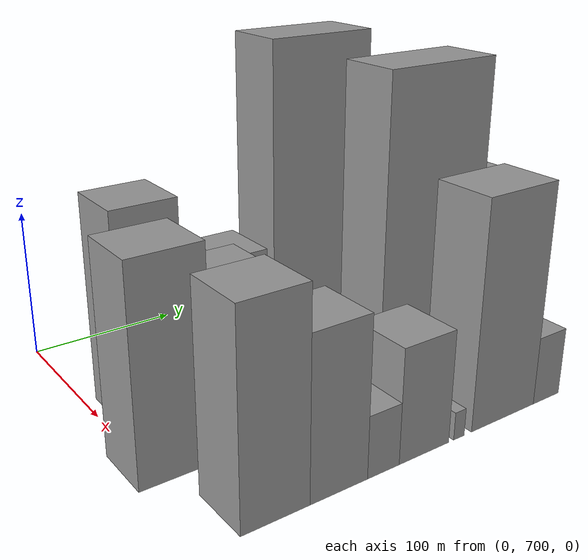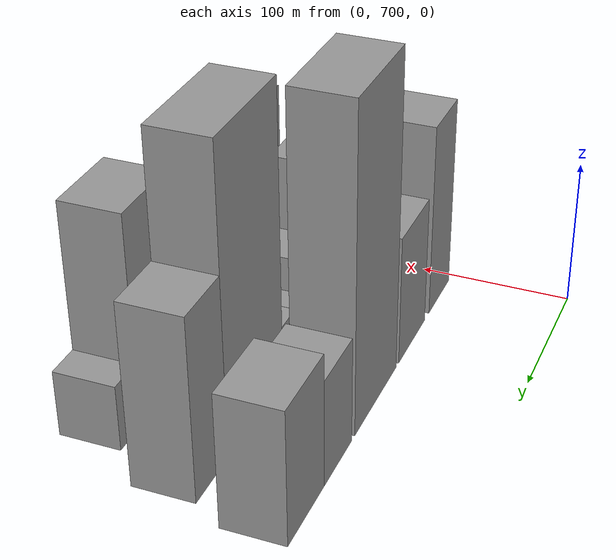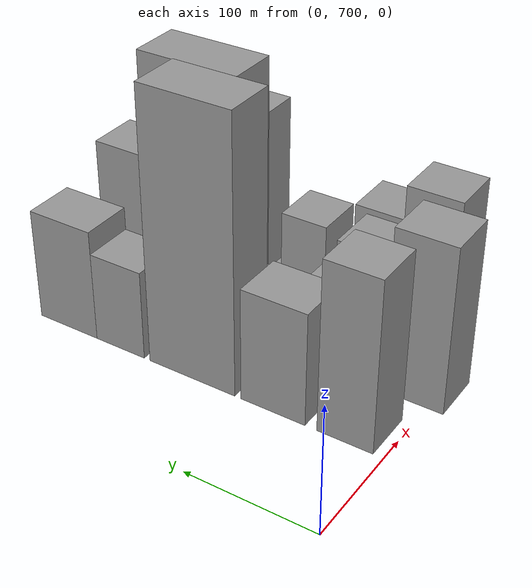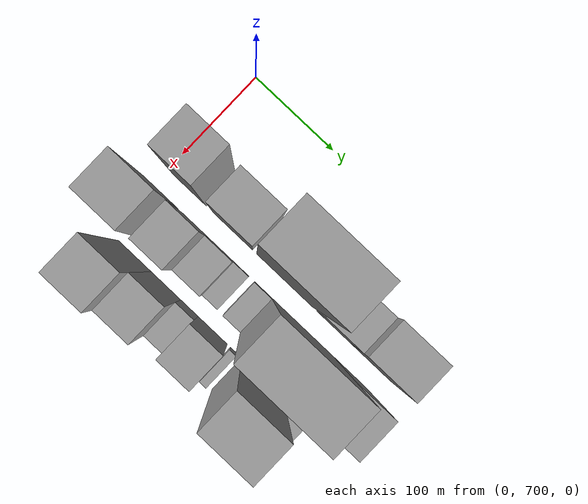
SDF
<sdf version="1.6">
 <world name="default">
  <model name="building_41">
   <static>1</static>
   <pose>100.0000 728.9118 0 0.000000 0.000000 0.000000</pose>
   <link name="link">
    <pose>0 0 67.50 0 0 0</pose>
    <collision name="collision"><geometry><box><size>40.0000 42.2020 135.0000</size></box></geometry></collision>
    <visual name="visual">
     <cast_shadows>0</cast_shadows>
     <geometry><box><size>40.0000 42.2020 135.0000</size></box></geometry>
     <material>
      <script>
       <uri>model://grey_wall/materials/scripts</uri>
       <uri>model://grey_wall/materials/textures</uri>
       <name>vrc/grey_wall</name>
      </script>
     </material>
    </visual>
   </link>
  </model>
  <model name="building_42">
   <static>1</static>
   <pose>100.0000 784.3996 0 0.000000 0.000000 0.000000</pose>
   <link name="link">
    <pose>0 0 45.00 0 0 0</pose>
    <collision name="collision"><geometry><box><size>40.0000 50.7735 90.0000</size></box></geometry></collision>
    <visual name="visual">
     <cast_shadows>0</cast_shadows>
     <geometry><box><size>40.0000 50.7735 90.0000</size></box></geometry>
     <material>
      <script>
       <uri>model://grey_wall/materials/scripts</uri>
       <uri>model://grey_wall/materials/textures</uri>
       <name>vrc/grey_wall</name>
      </script>
     </material>
    </visual>
   </link>
  </model>
  <model name="building_43">
   <static>1</static>
   <pose>100.0000 850.8839 0 0.000000 0.000000 0.000000</pose>
   <link name="link">
    <pose>0 0 108.00 0 0 0</pose>
    <collision name="collision"><geometry><box><size>40.0000 72.1952 216.0000</size></box></geometry></collision>
    <visual name="visual">
     <cast_shadows>0</cast_shadows>
     <geometry><box><size>40.0000 72.1952 216.0000</size></box></geometry>
     <material>
      <script>
       <uri>model://grey_wall/materials/scripts</uri>
       <uri>model://grey_wall/materials/textures</uri>
       <name>vrc/grey_wall</name>
      </script>
     </material>
    </visual>
   </link>
  </model>
  <model name="building_44">
   <static>1</static>
   <pose>100.0000 913.4026 0 0.000000 0.000000 0.000000</pose>
   <link name="link">
    <pose>0 0 36.00 0 0 0</pose>
    <collision name="collision"><geometry><box><size>40.0000 42.8422 72.0000</size></box></geometry></collision>
    <visual name="visual">
     <cast_shadows>0</cast_shadows>
     <geometry><box><size>40.0000 42.8422 72.0000</size></box></geometry>
     <material>
      <script>
       <uri>model://grey_wall/materials/scripts</uri>
       <uri>model://grey_wall/materials/textures</uri>
       <name>vrc/grey_wall</name>
      </script>
     </material>
    </visual>
   </link>
  </model>
  <model name="building_45">
   <static>1</static>
   <pose>100.0000 961.0812 0 0.000000 0.000000 0.000000</pose>
   <link name="link">
    <pose>0 0 45.00 0 0 0</pose>
    <collision name="collision"><geometry><box><size>40.0000 52.5149 90.0000</size></box></geometry></collision>
    <visual name="visual">
     <cast_shadows>0</cast_shadows>
     <geometry><box><size>40.0000 52.5149 90.0000</size></box></geometry>
     <material>
      <script>
       <uri>model://grey_wall/materials/scripts</uri>
       <uri>model://grey_wall/materials/textures</uri>
       <name>vrc/grey_wall</name>
      </script>
     </material>
    </visual>
   </link>
  </model>
  <model name="building_86">
   <static>1</static>
   <pose>160.0000 710.0963 0 0.000000 0.000000 0.000000</pose>
   <link name="link">
    <pose>0 0 66.00 0 0 0</pose>
    <collision name="collision"><geometry><box><size>40.0000 45.1971 132.0000</size></box></geometry></collision>
    <visual name="visual">
     <cast_shadows>0</cast_shadows>
     <geometry><box><size>40.0000 45.1971 132.0000</size></box></geometry>
     <material>
      <script>
       <uri>model://grey_wall/materials/scripts</uri>
       <uri>model://grey_wall/materials/textures</uri>
       <name>vrc/grey_wall</name>
      </script>
     </material>
    </visual>
   </link>
  </model>
  <model name="building_87">
   <static>1</static>
   <pose>160.0000 756.0813 0 0.000000 0.000000 0.000000</pose>
   <link name="link">
    <pose>0 0 54.00 0 0 0</pose>
    <collision name="collision"><geometry><box><size>40.0000 34.7728 108.0000</size></box></geometry></collision>
    <visual name="visual">
     <cast_shadows>0</cast_shadows>
     <geometry><box><size>40.0000 34.7728 108.0000</size></box></geometry>
     <material>
      <script>
       <uri>model://grey_wall/materials/scripts</uri>
       <uri>model://grey_wall/materials/textures</uri>
       <name>vrc/grey_wall</name>
      </script>
     </material>
    </visual>
   </link>
  </model>
  <model name="building_88">
   <static>1</static>
   <pose>160.0000 789.5304 0 0.000000 0.000000 0.000000</pose>
   <link name="link">
    <pose>0 0 28.50 0 0 0</pose>
    <collision name="collision"><geometry><box><size>40.0000 32.1255 57.0000</size></box></geometry></collision>
    <visual name="visual">
     <cast_shadows>0</cast_shadows>
     <geometry><box><size>40.0000 32.1255 57.0000</size></box></geometry>
     <material>
      <script>
       <uri>model://grey_wall/materials/scripts</uri>
       <uri>model://grey_wall/materials/textures</uri>
       <name>vrc/grey_wall</name>
      </script>
     </material>
    </visual>
   </link>
  </model>
  <model name="building_89">
   <static>1</static>
   <pose>160.0000 814.9199 0 0.000000 0.000000 0.000000</pose>
   <link name="link">
    <pose>0 0 16.50 0 0 0</pose>
    <collision name="collision"><geometry><box><size>40.0000 18.6533 33.0000</size></box></geometry></collision>
    <visual name="visual">
     <cast_shadows>0</cast_shadows>
     <geometry><box><size>40.0000 18.6533 33.0000</size></box></geometry>
     <material>
      <script>
       <uri>model://grey_wall/materials/scripts</uri>
       <uri>model://grey_wall/materials/textures</uri>
       <name>vrc/grey_wall</name>
      </script>
     </material>
    </visual>
   </link>
  </model>
  <model name="building_90">
   <static>1</static>
   <pose>160.0000 841.7469 0 0.000000 0.000000 0.000000</pose>
   <link name="link">
    <pose>0 0 19.50 0 0 0</pose>
    <collision name="collision"><geometry><box><size>40.0000 21.0008 39.0000</size></box></geometry></collision>
    <visual name="visual">
     <cast_shadows>0</cast_shadows>
     <geometry><box><size>40.0000 21.0008 39.0000</size></box></geometry>
     <material>
      <script>
       <uri>model://grey_wall/materials/scripts</uri>
       <uri>model://grey_wall/materials/textures</uri>
       <name>vrc/grey_wall</name>
      </script>
     </material>
    </visual>
   </link>
  </model>
  <model name="building_91">
   <static>1</static>
   <pose>160.0000 892.2612 0 0.000000 0.000000 0.000000</pose>
   <link name="link">
    <pose>0 0 102.00 0 0 0</pose>
    <collision name="collision"><geometry><box><size>40.0000 80.0278 204.0000</size></box></geometry></collision>
    <visual name="visual">
     <cast_shadows>0</cast_shadows>
     <geometry><box><size>40.0000 80.0278 204.0000</size></box></geometry>
     <material>
      <script>
       <uri>model://grey_wall/materials/scripts</uri>
       <uri>model://grey_wall/materials/textures</uri>
       <name>vrc/grey_wall</name>
      </script>
     </material>
    </visual>
   </link>
  </model>
  <model name="building_92">
   <static>1</static>
   <pose>160.0000 953.1589 0 0.000000 0.000000 0.000000</pose>
   <link name="link">
    <pose>0 0 61.50 0 0 0</pose>
    <collision name="collision"><geometry><box><size>40.0000 41.7677 123.0000</size></box></geometry></collision>
    <visual name="visual">
     <cast_shadows>0</cast_shadows>
     <geometry><box><size>40.0000 41.7677 123.0000</size></box></geometry>
     <material>
      <script>
       <uri>model://grey_wall/materials/scripts</uri>
       <uri>model://grey_wall/materials/textures</uri>
       <name>vrc/grey_wall</name>
      </script>
     </material>
    </visual>
   </link>
  </model>
  <model name="building_138">
   <static>1</static>
   <pose>220.0000 733.6966 0 0.000000 0.000000 0.000000</pose>
   <link name="link">
    <pose>0 0 63.00 0 0 0</pose>
    <collision name="collision"><geometry><box><size>40.0000 42.3187 126.0000</size></box></geometry></collision>
    <visual name="visual">
     <cast_shadows>0</cast_shadows>
     <geometry><box><size>40.0000 42.3187 126.0000</size></box></geometry>
     <material>
      <script>
       <uri>model://grey_wall/materials/scripts</uri>
       <uri>model://grey_wall/materials/textures</uri>
       <name>vrc/grey_wall</name>
      </script>
     </material>
    </visual>
   </link>
  </model>
  <model name="building_139">
   <static>1</static>
   <pose>220.0000 774.0160 0 0.000000 0.000000 0.000000</pose>
   <link name="link">
    <pose>0 0 49.50 0 0 0</pose>
    <collision name="collision"><geometry><box><size>40.0000 38.3201 99.0000</size></box></geometry></collision>
    <visual name="visual">
     <cast_shadows>0</cast_shadows>
     <geometry><box><size>40.0000 38.3201 99.0000</size></box></geometry>
     <material>
      <script>
       <uri>model://grey_wall/materials/scripts</uri>
       <uri>model://grey_wall/materials/textures</uri>
       <name>vrc/grey_wall</name>
      </script>
     </material>
    </visual>
   </link>
  </model>
  <model name="building_140">
   <static>1</static>
   <pose>220.0000 804.4506 0 0.000000 0.000000 0.000000</pose>
   <link name="link">
    <pose>0 0 19.50 0 0 0</pose>
    <collision name="collision"><geometry><box><size>40.0000 22.5490 39.0000</size></box></geometry></collision>
    <visual name="visual">
     <cast_shadows>0</cast_shadows>
     <geometry><box><size>40.0000 22.5490 39.0000</size></box></geometry>
     <material>
      <script>
       <uri>model://grey_wall/materials/scripts</uri>
       <uri>model://grey_wall/materials/textures</uri>
       <name>vrc/grey_wall</name>
      </script>
     </material>
    </visual>
   </link>
  </model>
  <model name="building_141">
   <static>1</static>
   <pose>220.0000 834.5217 0 0.000000 0.000000 0.000000</pose>
   <link name="link">
    <pose>0 0 36.00 0 0 0</pose>
    <collision name="collision"><geometry><box><size>40.0000 37.5933 72.0000</size></box></geometry></collision>
    <visual name="visual">
     <cast_shadows>0</cast_shadows>
     <geometry><box><size>40.0000 37.5933 72.0000</size></box></geometry>
     <material>
      <script>
       <uri>model://grey_wall/materials/scripts</uri>
       <uri>model://grey_wall/materials/textures</uri>
       <name>vrc/grey_wall</name>
      </script>
     </material>
    </visual>
   </link>
  </model>
  <model name="building_142">
   <static>1</static>
   <pose>220.0000 861.5441 0 0.000000 0.000000 0.000000</pose>
   <link name="link">
    <pose>0 0 9.00 0 0 0</pose>
    <collision name="collision"><geometry><box><size>40.0000 8.4514 18.0000</size></box></geometry></collision>
    <visual name="visual">
     <cast_shadows>0</cast_shadows>
     <geometry><box><size>40.0000 8.4514 18.0000</size></box></geometry>
     <material>
      <script>
       <uri>model://grey_wall/materials/scripts</uri>
       <uri>model://grey_wall/materials/textures</uri>
       <name>vrc/grey_wall</name>
      </script>
     </material>
    </visual>
   </link>
  </model>
  <model name="building_143">
   <static>1</static>
   <pose>220.0000 898.4843 0 0.000000 0.000000 0.000000</pose>
   <link name="link">
    <pose>0 0 72.00 0 0 0</pose>
    <collision name="collision"><geometry><box><size>40.0000 53.4292 144.0000</size></box></geometry></collision>
    <visual name="visual">
     <cast_shadows>0</cast_shadows>
     <geometry><box><size>40.0000 53.4292 144.0000</size></box></geometry>
     <material>
      <script>
       <uri>model://grey_wall/materials/scripts</uri>
       <uri>model://grey_wall/materials/textures</uri>
       <name>vrc/grey_wall</name>
      </script>
     </material>
    </visual>
   </link>
  </model>
  <model name="building_144">
   <static>1</static>
   <pose>220.0000 936.8274 0 0.000000 0.000000 0.000000</pose>
   <link name="link">
    <pose>0 0 22.50 0 0 0</pose>
    <collision name="collision"><geometry><box><size>40.0000 23.2571 45.0000</size></box></geometry></collision>
    <visual name="visual">
     <cast_shadows>0</cast_shadows>
     <geometry><box><size>40.0000 23.2571 45.0000</size></box></geometry>
     <material>
      <script>
       <uri>model://grey_wall/materials/scripts</uri>
       <uri>model://grey_wall/materials/textures</uri>
       <name>vrc/grey_wall</name>
      </script>
     </material>
    </visual>
   </link>
  </model>
 </world>
</sdf>
